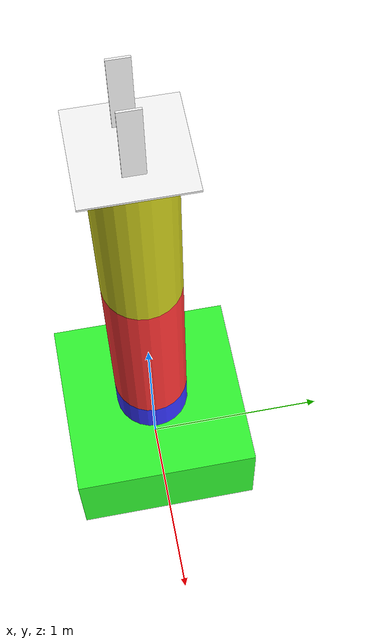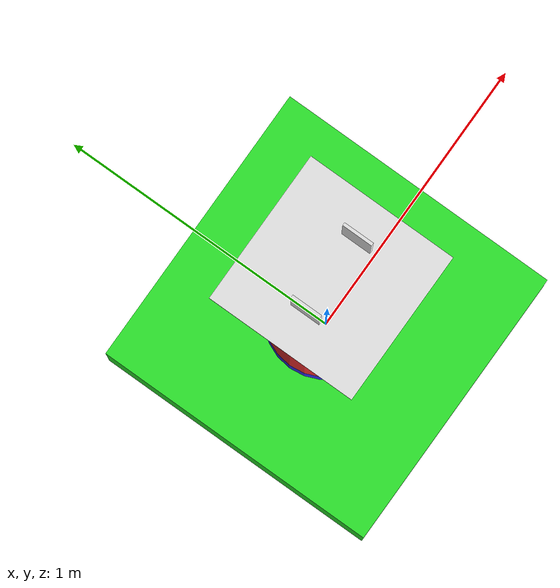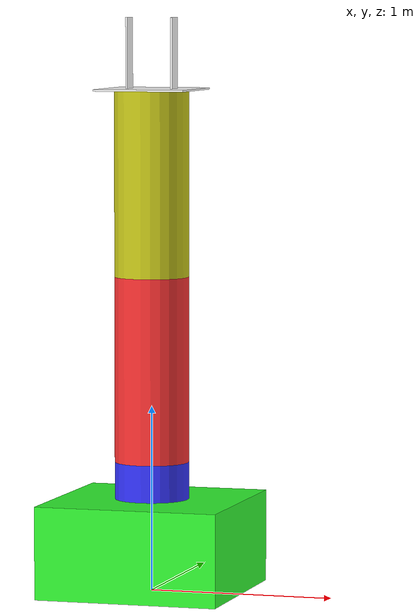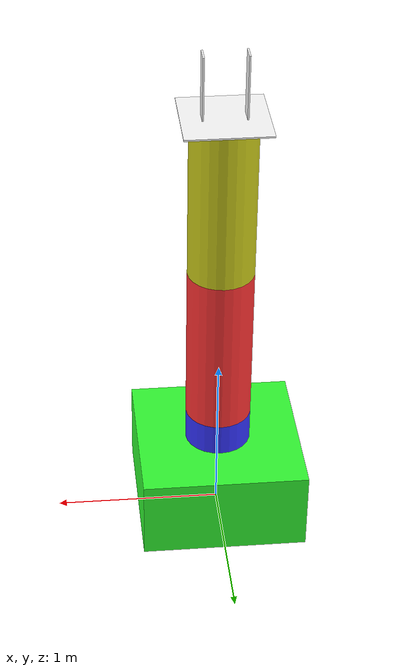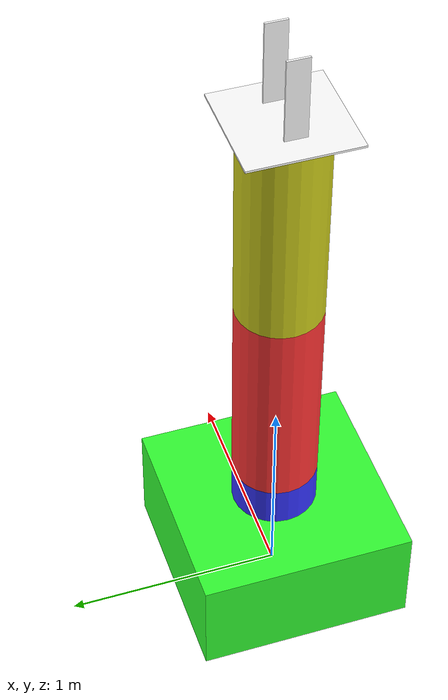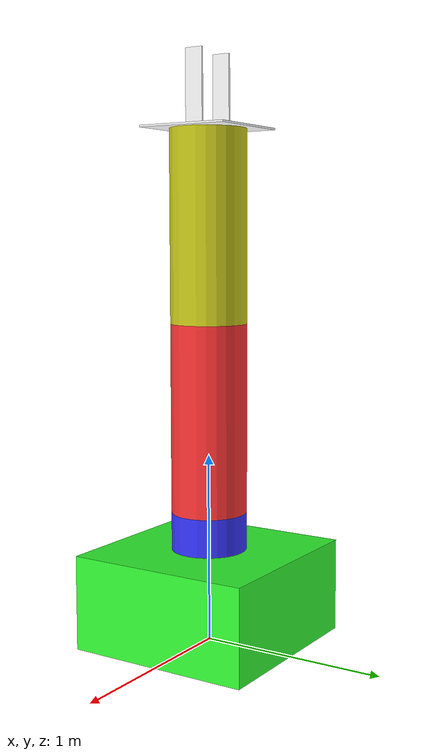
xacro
<?xml version="1.0"?>
<robot xmlns:xacro="http://www.ros.org/wiki/xacro" name="RobotArm">

	<xacro:include filename="Parameters.xacro"/>
	<xacro:include filename="Materials.xacro" />
	<xacro:include filename="Macros.xacro" />

	<link name="base_link">

		<visual>
			<origin xyz="0 0 ${base_height/2}" rpy="0 0 0"/>
			<geometry>
				<box size="${base_length} ${base_width} ${base_height}"/>
			</geometry>
			<material name="green"/>
		</visual>

		<colision>
			<origin xyz="0 0 ${base_height/2}" rpy="0 0 0"/>
			<geometry>
				<box size="${base_length} ${base_width} ${base_height}"/>
			</geometry>
		</colision>
	</link>

	<joint name="base-rotator_joint" type="revolute">

		<origin xyz="0 0 ${base_height}" rpy="0 0 -${pi/2}"/>
		<parent link="base_link"/>
		<child link="rotator_link"/>
		<axis xyz="0 0 1"/>
		<limit lower="0" upper="${pi}" velocity="100" effort="100"/>
	</joint>

	<link name="rotator_link">

		<visual>
			<origin xyz="0 0 ${rotator_length/2}"/>
			<geometry>
				<cylinder length="${rotator_length}" radius="${rotator_radius}"/>
			</geometry>
			<material name="blue"/>
		</visual>

		<colision>
			<origin xyz="0 0 ${rotator_length/2}"/>
			<geometry>
				<cylinder length="${rotator_length}" radius="${rotator_radius}"/>
			</geometry>
		</colision>

		<xacro:inertial_cylinder mass="0.7" length="${rotator_length}" radius="${rotator_radius}">
			<origin xyz="0 0 ${rotator_length/2}"/>
		</xacro:inertial_cylinder>

	</link>

	<joint name="rotator-arm1_joint" type="revolute">
		<origin xyz="0 0 ${rotator_length}" rpy="0 0 0"/>
		<parent link="rotator_link"/>
		<child link="arm1_link"/>
		<axis xyz="0 1 0"/>
		<limit lower="0" upper="${pi/2}" velocity="100" effort="100"/>
	</joint>

	<link name="arm1_link">

		<visual>
			<origin xyz="0 0 ${arm1_length/2}" rpy="0 0 0"/>
			<geometry>
				<cylinder length="${arm1_length}" radius="${arm1_radius}"/>
			</geometry>
			<material name="red"/>
		</visual>

		<colision>
			<origin xyz="0 0 ${arm1_length/2}" rpy="0 0 0"/>
			<geometry>
				<cylinder length="${arm1_length}" radius="${arm1_radius}"/>
			</geometry>
		</colision>

		<xacro:inertial_cylinder mass="0.5" length="${arm1_length}" radius="${arm1_radius}">
			<origin xyz="0 0 ${arm1_length/2}" rpy="0 0 0"/>
		</xacro:inertial_cylinder>
	</link>

	<joint name="arm1-arm2_joint" type="revolute">
		<origin xyz="0 0 ${arm1_length}" rpy="0 0 0"/>
		<parent link="arm1_link"/>
		<child link="arm2_link"/>
		<axis xyz="0 1 0"/>
		<limit lower="0" upper="${pi}" velocity="100" effort="100"/>
	</joint>

	<link name="arm2_link">

		<visual>
			<origin xyz="0 0 ${arm2_length/2}" rpy="0 0 0"/>
			<geometry>
				<cylinder length="${arm2_length}" radius="${arm2_radius}"/>
			</geometry>
			<material name="yellow"/>
		</visual>

		<colision>
			<origin xyz="0 0 ${arm2_length/2}" rpy="0 0 0"/>
			<geometry>
				<cylinder length="${arm2_length}" radius="${arm2_radius}"/>
			</geometry>
		</colision>

		<xacro:inertial_cylinder mass="0.5" length="${arm2_length}" radius="${arm2_radius}">
			<origin xyz="0 0 ${arm2_length/2}" rpy="0 0 0"/>
		</xacro:inertial_cylinder>
	</link>

	<joint name="arm2-gripperBase_joint" type="revolute">
		<origin xyz="0 0 ${arm2_length}" rpy="0 ${pi/2} 0"/>
		<parent link="arm2_link"/>
		<child link="gripperBase_link"/>
		<axis xyz="0 1 0"/>
		<limit lower="0" upper="${pi/2}" velocity="100" effort="100"/>
	</joint>

	<link name="gripperBase_link">

		<visual>
			<origin xyz="-${gripperBase_width/2} 0 0" rpy="0 0 0"/>
			<geometry>
				<box size="${gripperBase_width} ${gripperBase_height} ${gripperBase_height}"/>
			</geometry>
			<material name="white"/>
		</visual>
		<colision>
			<origin xyz="0 0 0" rpy="0 0 0"/>
			<geometry>
				<box size="${gripperBase_width} ${gripperBase_height} ${gripperBase_height}"/>
			</geometry>
		</colision>

		<xacro:inertial_box mass="0.2" x="${gripperBase_width}" y="${gripperBase_height}" z="${gripperBase_height}">
			<origin xyz="0 0 0" rpy="0 0 0"/>
		</xacro:inertial_box>
	</link>

	<joint name="gripperBase-gripperClawLeft_joint" type="revolute">

		<origin xyz="${gripperBase_width} ${gripperBase_height/4} 0" rpy="0 ${pi/2} 0"/>
		<parent link="gripperBase_link"/>
		<child link="gripperClawLeft_link"/>
		<axis xyz="-1 0 0"/>
		<limit lower="-${pi/6}" upper="${pi/6}" velocity="100" effort="100"/>
	</joint>

	<link name="gripperClawLeft_link">

		<visual>
			<origin xyz="0 0 -${gripperClaw_height/2}" rpy="0 0 0"/>
			<geometry>
				<box size="${gripperClaw_length} ${gripperClaw_width} ${gripperClaw_height}"/>
			</geometry>
			<material name="white"/>
		</visual>

		<colision>
			<origin xyz="0 0 -${gripperClaw_height/2}" rpy="0 0 0"/>
			<geometry>
				<box size="${gripperClaw_length} ${gripperClaw_width} ${gripperClaw_height}"/>
			</geometry>
		</colision>

		<xacro:inertial_box mass="0.1" x="${gripperClaw_length}" y="${gripperClaw_width}" z="${gripperClaw_height}">
			<origin xyz="0 0 -${gripperClaw_height/2}" rpy="0 0 0"/>
		</xacro:inertial_box>
	</link>

	<joint name="gripperBase-gripperClawRight_joint" type="revolute">

		<origin xyz="${gripperBase_width} -${gripperBase_height/4} 0" rpy="0 ${pi/2} 0"/>
		<parent link="gripperBase_link"/>
		<child link="gripperClawRight_link"/>
		<axis xyz="1 0 0"/>
		<limit lower="-${pi/6}" upper="${pi/6}" velocity="100" effort="100"/>
	</joint>

	<link name="gripperClawRight_link">

		<visual>
			<origin xyz="0 0 -${gripperClaw_height/2}" rpy="0 0 0"/>
			<geometry>
				<box size="${gripperClaw_length} ${gripperClaw_width} ${gripperClaw_height}"/>
			</geometry>
			<material name="white"/>
		</visual>

		<colision>
			<origin xyz="0 0 -${gripperClaw_height/2}" rpy="0 0 0"/>
			<geometry>
				<box size="${gripperClaw_length} ${gripperClaw_width} ${gripperClaw_height}"/>
			</geometry>
		</colision>

		<xacro:inertial_box mass="0.1" x="${gripperClaw_length}" y="${gripperClaw_width}" z="${gripperClaw_height}">
			<origin xyz="0 0 -${gripperClaw_height/2}" rpy="0 0 0"/>
		</xacro:inertial_box>
	</link>
</robot>

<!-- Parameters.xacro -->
<robot xmlns:xacro="http://www.ros.org/wiki/xacro">

	<xacro:property name="base_length" value="1"/>
	<xacro:property name="base_width" value="1"/>
	<xacro:property name="base_height" value="0.5"/>

	<xacro:property name="rotator_length" value="0.2"/>
	<xacro:property name="rotator_radius" value="0.2"/>

	<xacro:property name="arm1_length" value="1"/>
	<xacro:property name="arm1_radius" value="0.2"/>

	<xacro:property name="arm2_length" value="1"/>
	<xacro:property name="arm2_radius" value="0.2"/>

	<xacro:property name="gripperBase_width" value="0.01"/>
	<xacro:property name="gripperBase_height" value="0.5"/>

	<xacro:property name="gripperClaw_length" value="0.1"/>
	<xacro:property name="gripperClaw_width" value="0.01"/>
	<xacro:property name="gripperClaw_height" value="0.4"/>

</robot>

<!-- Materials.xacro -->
<robot xmlns:xacro="http://www.ros.org/wiki/xacro">

	<material name="green">
		<color rgba="0.2 1 0.2 1"/>
	</material>

	<material name="blue">
		<color rgba="0.2 0.2 1 1"/>
	</material>

	<material name="red">
		<color rgba="1 0.2 0.2 1"/>
	</material>

	<material name="yellow">
		<color rgba="0.8 0.8 0.1 1"/>
	</material>

	<material name="white">
		<color rgba="1 1 1 1"/>
	</material>
</robot>

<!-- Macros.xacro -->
<robot xmlns:xacro="http://www.ros.org/wiki/xacro">

	<xacro:macro name="inertial_box" params="mass x y z *origin">
		<inertial>
			<xacro:insert_block name="origin"/>
			<mass value="${mass}"/>
			<inertia ixx="${1/12 * mass * (y*y + z*z)}"
				 ixy="0"
				 ixz="0"
				 iyy="${1/12 * mass * (x*x + z*z)}"
				 iyz="0"
				 izz="${1/12 * mass * (x*x + y*y)}" />
		</inertial>
	</xacro:macro>

	<xacro:macro name="inertial_cylinder" params="mass length radius *origin">
		<inertial>
			<xacro:insert_block name="origin"/>
			<mass value="${mass}"/>
			<inertia ixx="${1/12 * mass * (3*radius*radius + length*length)}"
				 ixy="0"
				 ixz="0"
				 iyy="${1/12 * mass * (3*radius*radius + length*length)}"
				 iyz="0"
				 izz="${1/2 * mass * (radius*radius)}" />
		</inertial>
	</xacro:macro>
</robot>
